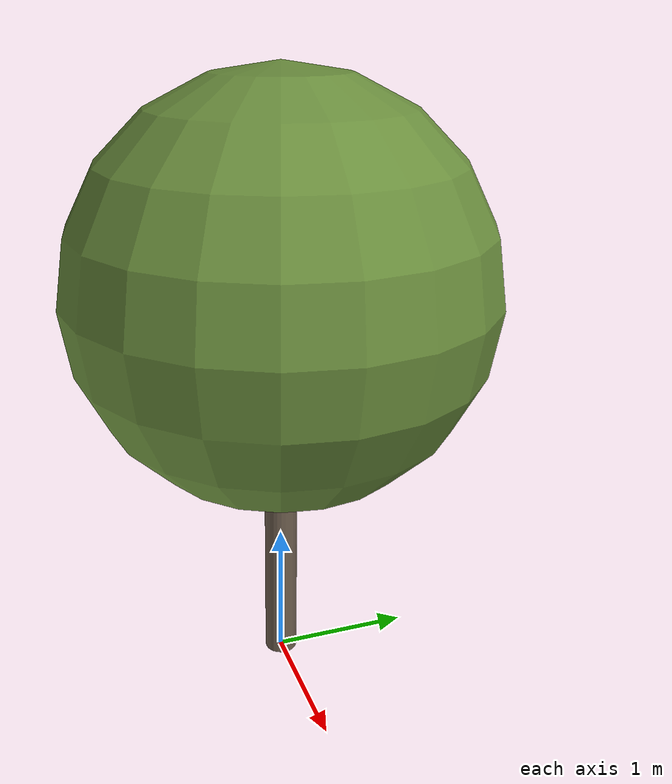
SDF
<?xml version="1.0" ?>
<sdf version="1.10">
  <model name="olivier_provence_11">
    <static>true</static>

    <!-- Tronc -->
    <link name="trunk">
      <pose>0 0 1.213572356149784 0 0 0</pose>
      <visual name="trunk_visual">
        <geometry>
          <cylinder>
            <radius>0.11826938984705235</radius>
            <length>2.427144712299568</length>
          </cylinder>
        </geometry>
        <material>
          <ambient>0.42 0.36 0.30 1</ambient>
          <diffuse>0.42 0.36 0.30 1</diffuse>
          <specular>0.1 0.1 0.1 1</specular>
        </material>
      </visual>
      <collision name="trunk_collision">
        <geometry>
          <cylinder>
            <radius>0.11826938984705235</radius>
            <length>2.427144712299568</length>
          </cylinder>
        </geometry>
      </collision>
    </link>

    <!-- Feuillage -->
    <link name="crown">
      <pose>0 0 2.8698415667773354 0 0 0</pose>
      <visual name="crown_visual">
        <geometry>
          <sphere>
              <radius>1.4756561815925582</radius>
            </sphere>
        </geometry>
        <material>
          <ambient>0.42 0.56 0.24 1</ambient>
          <diffuse>0.42 0.56 0.24 1</diffuse>
          <specular>0.1 0.1 0.1 1</specular>
        </material>
      </visual>
      <collision name="crown_collision">
        <geometry>
          <sphere>
            <radius>1.1805249452740465</radius>
          </sphere>
        </geometry>
      </collision>
    </link>

    <!-- Joint tronc-feuillage -->
    <joint name="trunk_crown_joint" type="fixed">
      <parent>trunk</parent>
      <child>crown</child>
    </joint>

  </model>
</sdf>
